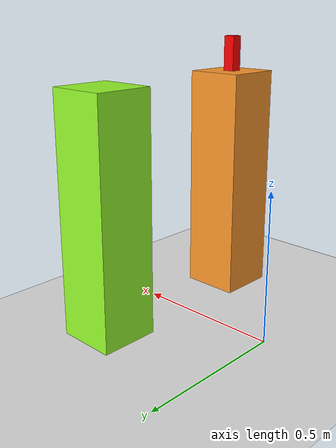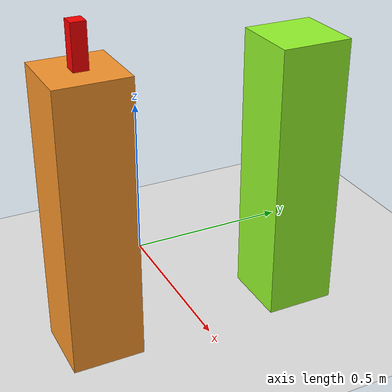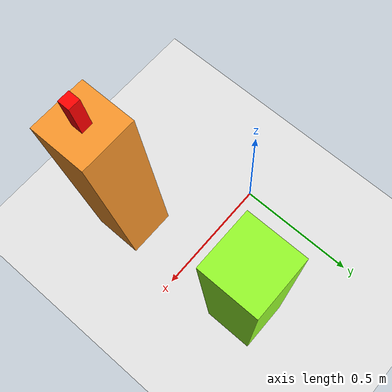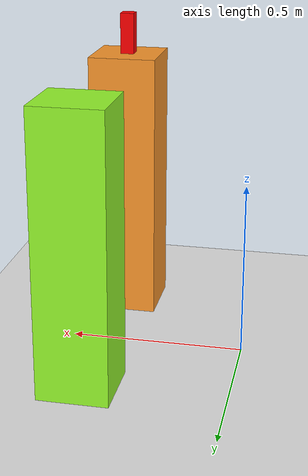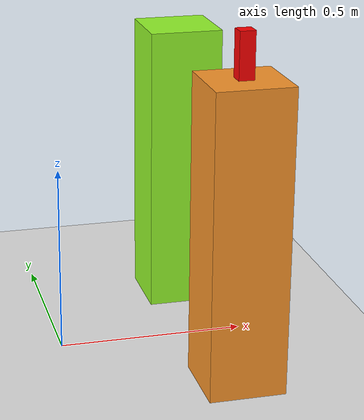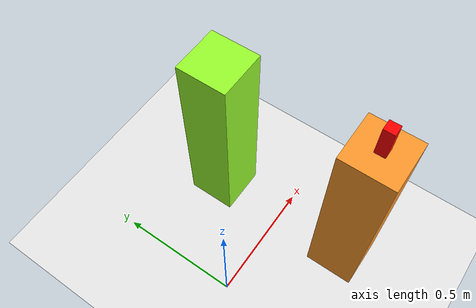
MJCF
<?xml version="1.0"?>
<mujoco model="panda scene">
    <statistic center="0.3 0 0.4" extent="1.5"/>

    <option cone="elliptic" impratio="10" noslip_iterations="20" timestep="0.001" integrator="implicitfast">
        <flag multiccd="enable"/>
    </option>

    <default>
        <default class="cube">
            <geom size="0.02 0.02 0.06" type="box"/>
        </default>
    </default>

    <visual>
        <headlight diffuse="0 0 0" ambient="1 1 1"/>
        <rgba fog="1.0 1.0 1.0 1.0"/>
        <global azimuth="180" elevation="-20"/>
    </visual>

    <asset>
        <material name="groundplane" rgba="0.9 0.9 0.9 1"/>
    </asset>

    <worldbody>
        <light pos="0 0 3" diffuse="1 1 1" castshadow="false" directional="true" intensity="2"/>
        <light pos="3 -4 3" dir="-3 4 -3" diffuse="1 1 1" directional="false" intensity="30"/>

        <geom name="floor" size="5 5 0.1" type="plane" material="groundplane"/>

        <body name="box1" pos="0.4 -0.3 0.4">
            <geom type="box" size=".1 .1 .4" rgba=".98 .59 .17 1" mass="0.1"/>
        </body>

        <body name="box2" pos="0.4 0.3 0.4">
            <geom type="box" size=".1 .1 .4" rgba=".59 .98 .17 1" mass="0.1"/>
        </body>

        <body name="redcube" pos="0.4 -0.3 0.86">
            <freejoint/>
            <geom class="cube" rgba="1 0 0 1"/>
        </body>
    </worldbody>
</mujoco>
